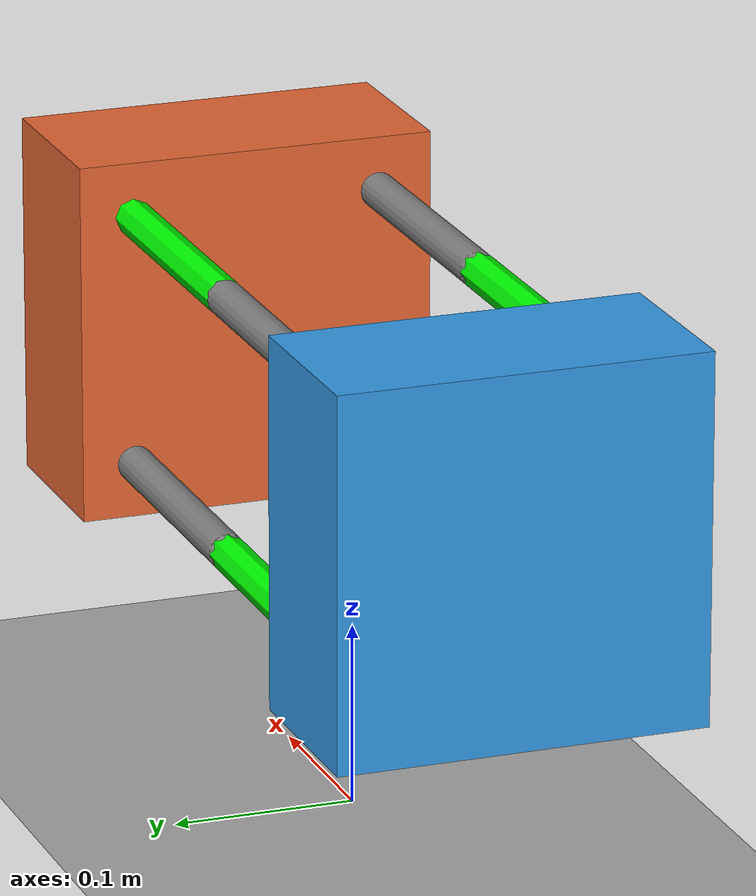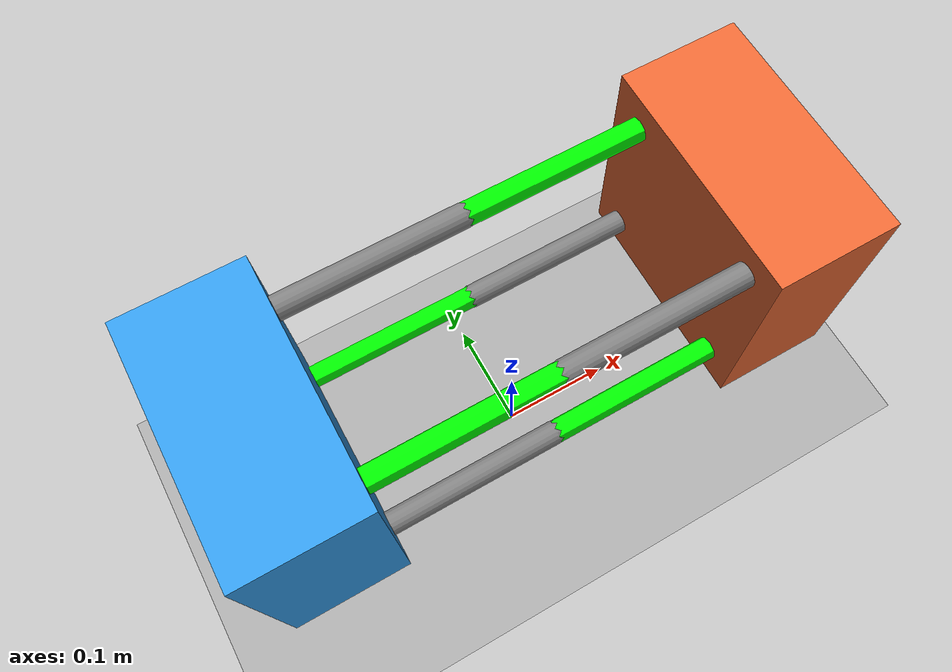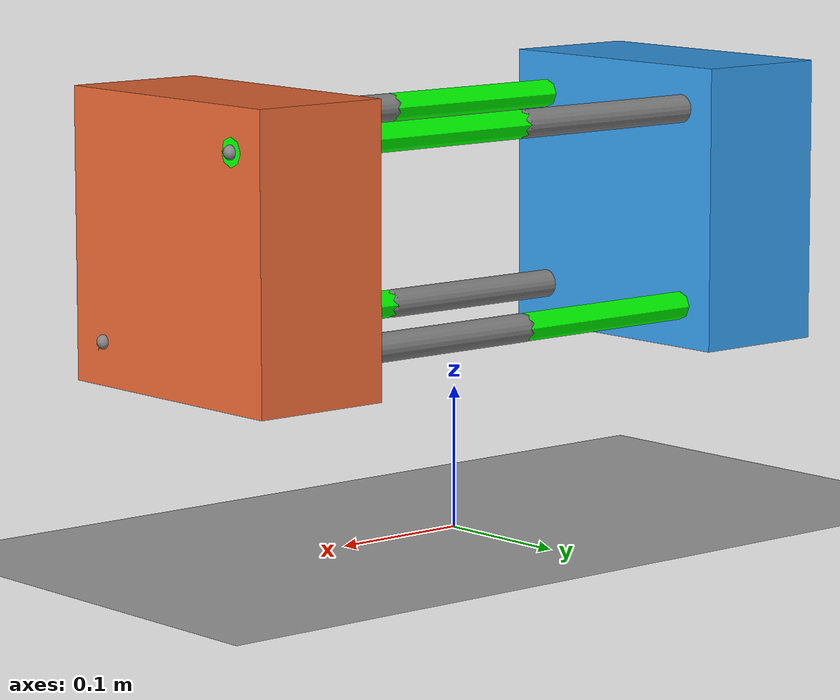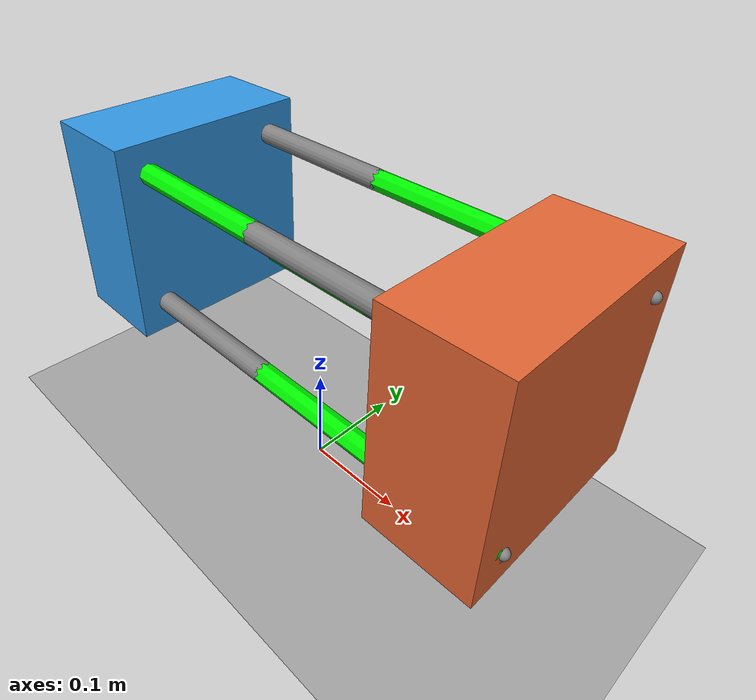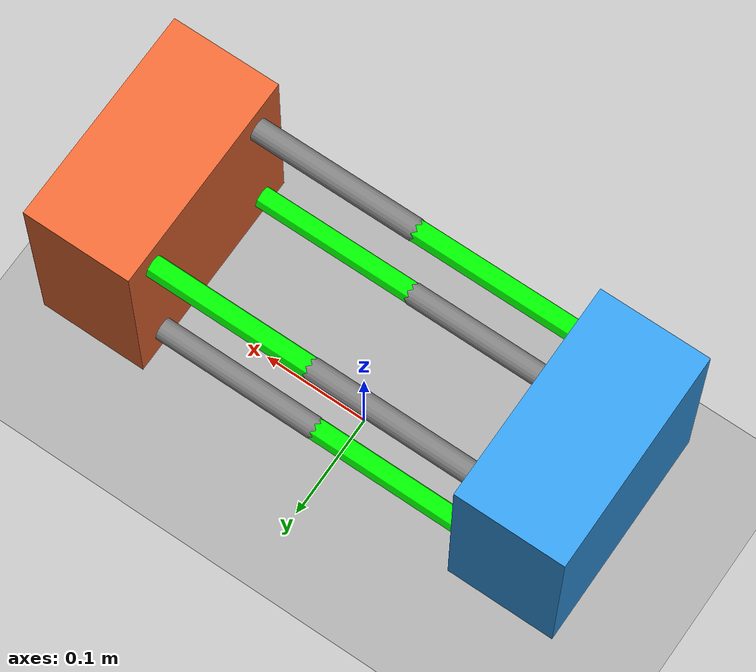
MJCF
<mujoco model="spring_tendon">
  <option timestep="0.001"/>
  <size njmax="200" nconmax="100"/>

  <asset>
    <texture name="grid" type="2d" builtin="checker" width="300" height="300"
             rgb1="0.8 0.8 0.8" rgb2="0.5 0.5 0.5" mark="edge" markrgb="0.2 0.2 0.2"/>
    <material name="gridmat" texture="grid" texrepeat="5 5" reflectance="0.1"/>
  </asset>

  <worldbody>
    <geom name="floor" type="plane" size="5 5 0.1" material="gridmat" friction="2 0.2 0.01"/>

    <!-- Block A -->
    <body name="block_a" pos="-0.2 0 0.22">
      <freejoint/>
      <geom type="box" size="0.05 0.1 0.1" density="500" friction="2 0.2 0.01" rgba="0.2 0.6 0.9 1"/>

      <site name="site2b" pos="0.05 -0.07 0.07"/>
      <site name="site4b" pos="0.05 0.07 -0.07"/>

      <!-- Spring 1 A -->
      <body name="spring_1a" pos="0.05 0.07 0.07">
        <joint name="spring1a_hinge" type="hinge" axis="1 0 0"/>
        <geom type="capsule" fromto="0 0 0 0.15 0 0" size="0.01" density="100"/>

        <site name="siteM1a" pos="0.15 0.0 0.0"/>
        <!-- Spring 1 B -->
      </body>

      <!-- Spring 3 A -->
      <body name="spring_3a" pos="0.05 -0.07 -0.07">
        <joint name="spring3a_hinge" type="hinge" axis="1 0 0"/>
        <geom type="capsule" fromto="0 0 0 0.15 0 0" size="0.01" density="100"/>
        <!-- Spring 3 B -->
        <site name="siteM3a" pos="0.15 -0.0 -0.0"/>

      </body>
    </body>

    <!-- Block B -->
    <body name="block_b" pos="0.2 0 0.22">
      <freejoint/>
      <geom type="box" size="0.05 0.1 0.1" density="500" friction="2 0.2 0.01" rgba="0.9 0.4 0.2 1"/>

      <site name="site1b" pos="0.05 0.07 0.07"/>
      <site name="site3b" pos="0.05 -0.07 -0.07"/>

      <!-- Spring 2 A -->
      <body name="spring_2a" pos="-0.05 -0.07 0.07">
        <joint name="spring2a_hinge" type="hinge" axis="1 0 0"/>
        <geom type="capsule" fromto="0 0 0 -0.15 0 0" size="0.01" density="100"/>

        <!-- Spring 2 B -->
        <site  name="siteM2a" pos="-0.15 -0.0 0.0"/>
      </body>

      <!-- Spring 4 A -->
      <body name="spring_4a" pos="-0.05 0.07 -0.07">
        <joint name="spring4a_hinge" type="hinge" axis="1 0 0"/>
        <geom type="capsule" fromto="0 0 0 -0.15 0 0" size="0.01" density="100"/>
        <!-- Spring 4 B -->
        <site name="siteM4a" pos="-0.15 0.0 -0.0"/>
      </body>
    </body>
  </worldbody>

  <actuator>
    <motor name="spring1a_motor" joint="spring1a_hinge" gear="0.1" ctrlrange="-10 10"/>
    <motor name="spring2a_motor" joint="spring2a_hinge" gear="0.1" ctrlrange="-10 10"/>
    <motor name="spring3a_motor" joint="spring3a_hinge" gear="0.1" ctrlrange="-10 10"/>
    <motor name="spring4a_motor" joint="spring4a_hinge" gear="0.1" ctrlrange="-10 10"/>
  </actuator>

  <tendon>
    <spatial name="inter1" width="0.01" rgba="0 1 0 1" stiffness="100" damping="10">
        <site site="siteM1a"/>
        <site site="site1b"/>
    </spatial>
    <spatial name="inter2" width="0.01" rgba="0 1 0 1" stiffness="100" damping="10">
        <site site="siteM2a"/>
        <site site="site2b"/>
    </spatial>
    <spatial name="inter3" width="0.01" rgba="0 1 0 1" stiffness="100" damping="10">
        <site site="siteM3a"/>
        <site site="site3b"/>
    </spatial>
    <spatial name="inter4" width="0.01" rgba="0 1 0 1" stiffness="100" damping="10">
        <site site="siteM4a"/>
        <site site="site4b"/>
    </spatial>
  </tendon>

  <equality>
     <!-- Weld free ends of springs to opposite blocks -->
  </equality>
</mujoco>
